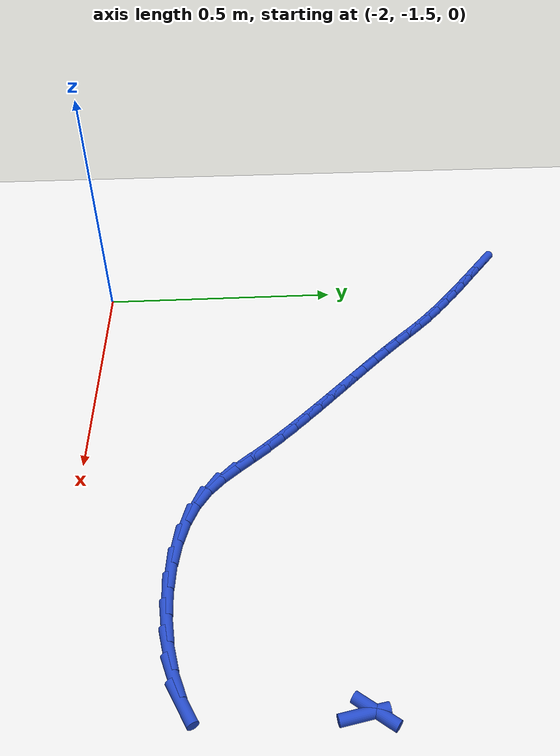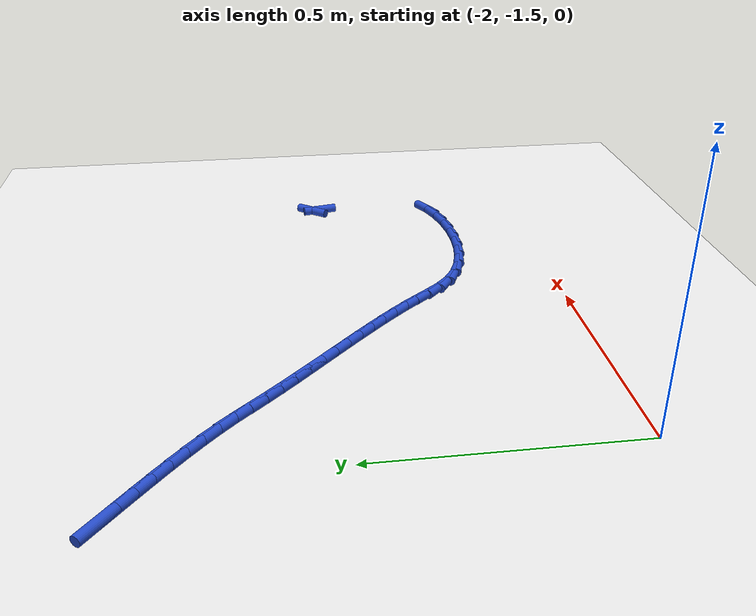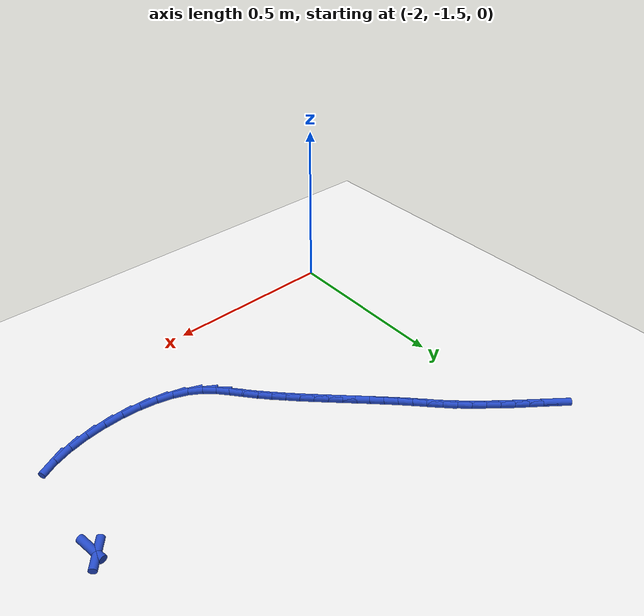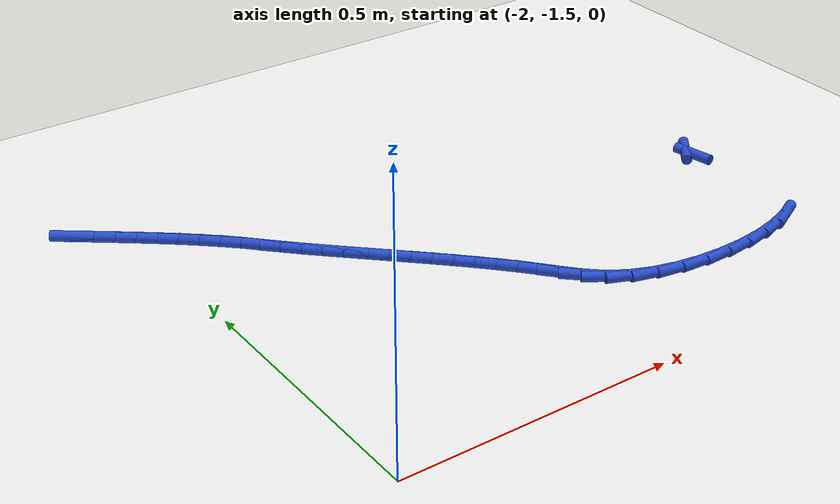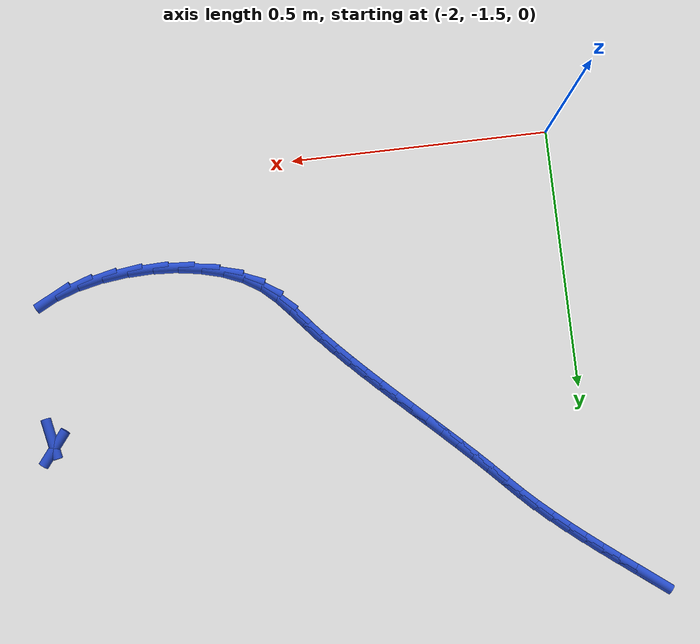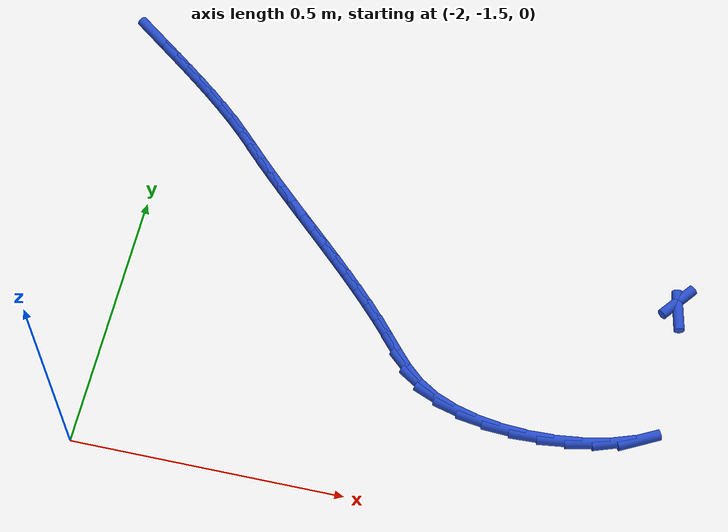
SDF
<sdf version="1.6">
 <world name="default">
  <model name="ground_plane">
   <static>1</static>
   <link name="link">
    <collision name="collision">
     <geometry><plane><normal>0 0 1</normal><size>100 100</size></plane></geometry>
     <surface><friction><ode><mu>100</mu><mu2>50</mu2></ode></friction></surface>
    </collision>
    <visual name="visual">
     <cast_shadows>0</cast_shadows>
     <geometry><plane><normal>0 0 1</normal><size>100 100</size></plane></geometry>
     <material>
      <script><uri>file://media/materials/scripts/gazebo.material</uri><name>Gazebo/WhiteGlow</name></script>
     </material>
    </visual>
   </link>
  </model>
  <model name="line">
   <link name="link_129">
    <pose>-2.0939688466283197 -0.6196924280987919 0.01 0 1.57 -0.6547579813257514</pose>
    <collision name="collision">
     <geometry><cylinder><radius>0.01</radius><length>0.08</length></cylinder></geometry>
    </collision>
    <visual name="visual">
     <material>
      <script><name>Gazebo/Blue</name><uri>file://media/materials/scripts/gazebo.material</uri></script>
     </material>
     <geometry><cylinder><radius>0.01</radius><length>0.08</length></cylinder></geometry>
    </visual>
   </link>
   <link name="link_130">
    <pose>-2.064086637130896 -0.6426341770940153 0.01 0 1.57 -0.6550877856548699</pose>
    <collision name="collision">
     <geometry><cylinder><radius>0.01</radius><length>0.08</length></cylinder></geometry>
    </collision>
    <visual name="visual">
     <material>
      <script><name>Gazebo/Blue</name><uri>file://media/materials/scripts/gazebo.material</uri></script>
     </material>
     <geometry><cylinder><radius>0.01</radius><length>0.08</length></cylinder></geometry>
    </visual>
   </link>
   <link name="link_131">
    <pose>-2.0342122661995674 -0.6655855721905874 0.01 0 1.57 -0.6603141730243608</pose>
    <collision name="collision">
     <geometry><cylinder><radius>0.01</radius><length>0.08</length></cylinder></geometry>
    </collision>
    <visual name="visual">
     <material>
      <script><name>Gazebo/Blue</name><uri>file://media/materials/scripts/gazebo.material</uri></script>
     </material>
     <geometry><cylinder><radius>0.01</radius><length>0.08</length></cylinder></geometry>
    </visual>
   </link>
   <link name="link_132">
    <pose>-2.004479908656672 -0.6886759722158221 0.01 0 1.57 -0.670458499256323</pose>
    <collision name="collision">
     <geometry><cylinder><radius>0.01</radius><length>0.08</length></cylinder></geometry>
    </collision>
    <visual name="visual">
     <material>
      <script><name>Gazebo/Blue</name><uri>file://media/materials/scripts/gazebo.material</uri></script>
     </material>
     <geometry><cylinder><radius>0.01</radius><length>0.08</length></cylinder></geometry>
    </visual>
   </link>
   <link name="link_133">
    <pose>-1.9750237393245427 -0.7120347359970344 0.01 0 1.57 -0.6855590541402593</pose>
    <collision name="collision">
     <geometry><cylinder><radius>0.01</radius><length>0.08</length></cylinder></geometry>
    </collision>
    <visual name="visual">
     <material>
      <script><name>Gazebo/Blue</name><uri>file://media/materials/scripts/gazebo.material</uri></script>
     </material>
     <geometry><cylinder><radius>0.01</radius><length>0.08</length></cylinder></geometry>
    </visual>
   </link>
   <link name="link_134">
    <pose>-1.9459779330255138 -0.7357912223615386 0.01 0 1.57 -0.7056639234185472</pose>
    <collision name="collision">
     <geometry><cylinder><radius>0.01</radius><length>0.08</length></cylinder></geometry>
    </collision>
    <visual name="visual">
     <material>
      <script><name>Gazebo/Blue</name><uri>file://media/materials/scripts/gazebo.material</uri></script>
     </material>
     <geometry><cylinder><radius>0.01</radius><length>0.08</length></cylinder></geometry>
    </visual>
   </link>
   <link name="link_135">
    <pose>-1.9174766645819217 -0.7600747901366502 0.01 0 1.57 -0.7308199772554973</pose>
    <collision name="collision">
     <geometry><cylinder><radius>0.01</radius><length>0.08</length></cylinder></geometry>
    </collision>
    <visual name="visual">
     <material>
      <script><name>Gazebo/Blue</name><uri>file://media/materials/scripts/gazebo.material</uri></script>
     </material>
     <geometry><cylinder><radius>0.01</radius><length>0.08</length></cylinder></geometry>
    </visual>
   </link>
   <link name="link_136">
    <pose>-1.8896541088161007 -0.7850147981496822 0.01 0 1.57 -0.7610576672949914</pose>
    <collision name="collision">
     <geometry><cylinder><radius>0.01</radius><length>0.08</length></cylinder></geometry>
    </collision>
    <visual name="visual">
     <material>
      <script><name>Gazebo/Blue</name><uri>file://media/materials/scripts/gazebo.material</uri></script>
     </material>
     <geometry><cylinder><radius>0.01</radius><length>0.08</length></cylinder></geometry>
    </visual>
   </link>
   <link name="link_137">
    <pose>-1.8626444405503866 -0.8107406052279504 0.01 0 1.57 -0.7942583122493775</pose>
    <collision name="collision">
     <geometry><cylinder><radius>0.01</radius><length>0.08</length></cylinder></geometry>
    </collision>
    <visual name="visual">
     <material>
      <script><name>Gazebo/Blue</name><uri>file://media/materials/scripts/gazebo.material</uri></script>
     </material>
     <geometry><cylinder><radius>0.01</radius><length>0.08</length></cylinder></geometry>
    </visual>
   </link>
   <link name="link_138">
    <pose>-1.8365232877310318 -0.8373287827811847 0.01 0 1.57 -0.802233622125424</pose>
    <collision name="collision">
     <geometry><cylinder><radius>0.01</radius><length>0.08</length></cylinder></geometry>
    </collision>
    <visual name="visual">
     <material>
      <script><name>Gazebo/Blue</name><uri>file://media/materials/scripts/gazebo.material</uri></script>
     </material>
     <geometry><cylinder><radius>0.01</radius><length>0.08</length></cylinder></geometry>
    </visual>
   </link>
   <link name="link_139">
    <pose>-1.8105873080798456 -0.8641530899929315 0.01 0 1.57 -0.7873162768102542</pose>
    <collision name="collision">
     <geometry><cylinder><radius>0.01</radius><length>0.08</length></cylinder></geometry>
    </collision>
    <visual name="visual">
     <material>
      <script><name>Gazebo/Blue</name><uri>file://media/materials/scripts/gazebo.material</uri></script>
     </material>
     <geometry><cylinder><radius>0.01</radius><length>0.08</length></cylinder></geometry>
    </visual>
   </link>
   <link name="link_140">
    <pose>-1.784203792484474 -0.8906380133745841 0.01 0 1.57 -0.7746835203855394</pose>
    <collision name="collision">
     <geometry><cylinder><radius>0.01</radius><length>0.08</length></cylinder></geometry>
    </collision>
    <visual name="visual">
     <material>
      <script><name>Gazebo/Blue</name><uri>file://media/materials/scripts/gazebo.material</uri></script>
     </material>
     <geometry><cylinder><radius>0.01</radius><length>0.08</length></cylinder></geometry>
    </visual>
   </link>
   <link name="link_141">
    <pose>-1.7574450154666854 -0.9168294262977675 0.01 0 1.57 -0.7656140366879018</pose>
    <collision name="collision">
     <geometry><cylinder><radius>0.01</radius><length>0.08</length></cylinder></geometry>
    </collision>
    <visual name="visual">
     <material>
      <script><name>Gazebo/Blue</name><uri>file://media/materials/scripts/gazebo.material</uri></script>
     </material>
     <geometry><cylinder><radius>0.01</radius><length>0.08</length></cylinder></geometry>
    </visual>
   </link>
   <link name="link_142">
    <pose>-1.7304200617634904 -0.9428056609443642 0.01 0 1.57 -0.7600806623275649</pose>
    <collision name="collision">
     <geometry><cylinder><radius>0.01</radius><length>0.08</length></cylinder></geometry>
    </collision>
    <visual name="visual">
     <material>
      <script><name>Gazebo/Blue</name><uri>file://media/materials/scripts/gazebo.material</uri></script>
     </material>
     <geometry><cylinder><radius>0.01</radius><length>0.08</length></cylinder></geometry>
    </visual>
   </link>
   <link name="link_143">
    <pose>-1.7032380161118998 -0.9686450494962588 0.01 0 1.57 -0.7580676213968588</pose>
    <collision name="collision">
     <geometry><cylinder><radius>0.01</radius><length>0.08</length></cylinder></geometry>
    </collision>
    <visual name="visual">
     <material>
      <script><name>Gazebo/Blue</name><uri>file://media/materials/scripts/gazebo.material</uri></script>
     </material>
     <geometry><cylinder><radius>0.01</radius><length>0.08</length></cylinder></geometry>
    </visual>
   </link>
   <link name="link_144">
    <pose>-1.676007963248927 -0.9944259241353339 0.01 0 1.57 -0.7595724736849776</pose>
    <collision name="collision">
     <geometry><cylinder><radius>0.01</radius><length>0.08</length></cylinder></geometry>
    </collision>
    <visual name="visual">
     <material>
      <script><name>Gazebo/Blue</name><uri>file://media/materials/scripts/gazebo.material</uri></script>
     </material>
     <geometry><cylinder><radius>0.01</radius><length>0.08</length></cylinder></geometry>
    </visual>
   </link>
   <link name="link_145">
    <pose>-1.648838987911581 -1.0202266170434728 0.01 0 1.57 -0.764606860199493</pose>
    <collision name="collision">
     <geometry><cylinder><radius>0.01</radius><length>0.08</length></cylinder></geometry>
    </collision>
    <visual name="visual">
     <material>
      <script><name>Gazebo/Blue</name><uri>file://media/materials/scripts/gazebo.material</uri></script>
     </material>
     <geometry><cylinder><radius>0.01</radius><length>0.08</length></cylinder></geometry>
    </visual>
   </link>
   <link name="link_146">
    <pose>-1.6218401748368747 -1.0461254604025596 0.01 0 1.57 -0.7731960717983832</pose>
    <collision name="collision">
     <geometry><cylinder><radius>0.01</radius><length>0.08</length></cylinder></geometry>
    </collision>
    <visual name="visual">
     <material>
      <script><name>Gazebo/Blue</name><uri>file://media/materials/scripts/gazebo.material</uri></script>
     </material>
     <geometry><cylinder><radius>0.01</radius><length>0.08</length></cylinder></geometry>
    </visual>
   </link>
   <link name="link_147">
    <pose>-1.595120608761817 -1.0722007863944774 0.01 0 1.57 -0.7853773980497871</pose>
    <collision name="collision">
     <geometry><cylinder><radius>0.01</radius><length>0.08</length></cylinder></geometry>
    </collision>
    <visual name="visual">
     <material>
      <script><name>Gazebo/Blue</name><uri>file://media/materials/scripts/gazebo.material</uri></script>
     </material>
     <geometry><cylinder><radius>0.01</radius><length>0.08</length></cylinder></geometry>
    </visual>
   </link>
   <link name="link_148">
    <pose>-1.5687893744234205 -1.0985309272011106 0.01 0 1.57 -0.8011971472219053</pose>
    <collision name="collision">
     <geometry><cylinder><radius>0.01</radius><length>0.08</length></cylinder></geometry>
    </collision>
    <visual name="visual">
     <material>
      <script><name>Gazebo/Blue</name><uri>file://media/materials/scripts/gazebo.material</uri></script>
     </material>
     <geometry><cylinder><radius>0.01</radius><length>0.08</length></cylinder></geometry>
    </visual>
   </link>
   <link name="link_149">
    <pose>-1.5429555565586972 -1.1251942150043415 0.01 0 1.57 -0.8207061745515772</pose>
    <collision name="collision">
     <geometry><cylinder><radius>0.01</radius><length>0.08</length></cylinder></geometry>
    </collision>
    <visual name="visual">
     <material>
      <script><name>Gazebo/Blue</name><uri>file://media/materials/scripts/gazebo.material</uri></script>
     </material>
     <geometry><cylinder><radius>0.01</radius><length>0.08</length></cylinder></geometry>
    </visual>
   </link>
   <link name="link_150">
    <pose>-1.5177282399046568 -1.1522689819860537 0.01 0 1.57 -0.84395372808618</pose>
    <collision name="collision">
     <geometry><cylinder><radius>0.01</radius><length>0.08</length></cylinder></geometry>
    </collision>
    <visual name="visual">
     <material>
      <script><name>Gazebo/Blue</name><uri>file://media/materials/scripts/gazebo.material</uri></script>
     </material>
     <geometry><cylinder><radius>0.01</radius><length>0.08</length></cylinder></geometry>
    </visual>
   </link>
   <link name="link_151">
    <pose>-1.4932165091983114 -1.1798335603281314 0.01 0 1.57 -0.86814246162454</pose>
    <collision name="collision">
     <geometry><cylinder><radius>0.01</radius><length>0.08</length></cylinder></geometry>
    </collision>
    <visual name="visual">
     <material>
      <script><name>Gazebo/Blue</name><uri>file://media/materials/scripts/gazebo.material</uri></script>
     </material>
     <geometry><cylinder><radius>0.01</radius><length>0.08</length></cylinder></geometry>
    </visual>
   </link>
   <link name="link_152">
    <pose>-1.4694427066032711 -1.207907266390742 0.01 0 1.57 -0.845641160961325</pose>
    <collision name="collision">
     <geometry><cylinder><radius>0.01</radius><length>0.08</length></cylinder></geometry>
    </collision>
    <visual name="visual">
     <material>
      <script><name>Gazebo/Blue</name><uri>file://media/materials/scripts/gazebo.material</uri></script>
     </material>
     <geometry><cylinder><radius>0.01</radius><length>0.08</length></cylinder></geometry>
    </visual>
   </link>
   <link name="link_153">
    <pose>-1.444972763667559 -1.2355185389768535 0.01 0 1.57 -0.7392897263788432</pose>
    <collision name="collision">
     <geometry><cylinder><radius>0.01</radius><length>0.08</length></cylinder></geometry>
    </collision>
    <visual name="visual">
     <material>
      <script><name>Gazebo/Blue</name><uri>file://media/materials/scripts/gazebo.material</uri></script>
     </material>
     <geometry><cylinder><radius>0.01</radius><length>0.08</length></cylinder></geometry>
    </visual>
   </link>
   <link name="link_154">
    <pose>-1.417164441721853 -1.2608738311521566 0.01 0 1.57 -0.5645551242546443</pose>
    <collision name="collision">
     <geometry><cylinder><radius>0.01</radius><length>0.08</length></cylinder></geometry>
    </collision>
    <visual name="visual">
     <material>
      <script><name>Gazebo/Blue</name><uri>file://media/materials/scripts/gazebo.material</uri></script>
     </material>
     <geometry><cylinder><radius>0.01</radius><length>0.08</length></cylinder></geometry>
    </visual>
   </link>
   <link name="link_155">
    <pose>-1.3834687050544838 -1.2822137907009117 0.01 0 1.57 -0.39291837765451676</pose>
    <collision name="collision">
     <geometry><cylinder><radius>0.01</radius><length>0.08</length></cylinder></geometry>
    </collision>
    <visual name="visual">
     <material>
      <script><name>Gazebo/Blue</name><uri>file://media/materials/scripts/gazebo.material</uri></script>
     </material>
     <geometry><cylinder><radius>0.01</radius><length>0.08</length></cylinder></geometry>
    </visual>
   </link>
   <link name="link_156">
    <pose>-1.343518152662732 -1.2987721164020685 0.01 0 1.57 -0.2584851916518526</pose>
    <collision name="collision">
     <geometry><cylinder><radius>0.01</radius><length>0.08</length></cylinder></geometry>
    </collision>
    <visual name="visual">
     <material>
      <script><name>Gazebo/Blue</name><uri>file://media/materials/scripts/gazebo.material</uri></script>
     </material>
     <geometry><cylinder><radius>0.01</radius><length>0.08</length></cylinder></geometry>
    </visual>
   </link>
   <link name="link_157">
    <pose>-1.2987567816071457 -1.3106070312508067 0.01 0 1.57 -0.14855881906242968</pose>
    <collision name="collision">
     <geometry><cylinder><radius>0.01</radius><length>0.08</length></cylinder></geometry>
    </collision>
    <visual name="visual">
     <material>
      <script><name>Gazebo/Blue</name><uri>file://media/materials/scripts/gazebo.material</uri></script>
     </material>
     <geometry><cylinder><radius>0.01</radius><length>0.08</length></cylinder></geometry>
    </visual>
   </link>
   <link name="link_158">
    <pose>-1.2506834912027496 -1.3178017490156009 0.01 0 1.57 -0.05282572286516921</pose>
    <collision name="collision">
     <geometry><cylinder><radius>0.01</radius><length>0.08</length></cylinder></geometry>
    </collision>
    <visual name="visual">
     <material>
      <script><name>Gazebo/Blue</name><uri>file://media/materials/scripts/gazebo.material</uri></script>
     </material>
     <geometry><cylinder><radius>0.01</radius><length>0.08</length></cylinder></geometry>
    </visual>
   </link>
   <link name="link_159">
    <pose>-1.2007971807645708 -1.3204394834649267 0.01 0 1.57 0.03655779533646795</pose>
    <collision name="collision">
     <geometry><cylinder><radius>0.01</radius><length>0.08</length></cylinder></geometry>
    </collision>
    <visual name="visual">
     <material>
      <script><name>Gazebo/Blue</name><uri>file://media/materials/scripts/gazebo.material</uri></script>
     </material>
     <geometry><cylinder><radius>0.01</radius><length>0.08</length></cylinder></geometry>
    </visual>
   </link>
   <link name="link_160">
    <pose>-1.1505967496076348 -1.3186034483672586 0.01 0 1.57 0.12635592277739488</pose>
    <collision name="collision">
     <geometry><cylinder><radius>0.01</radius><length>0.08</length></cylinder></geometry>
    </collision>
    <visual name="visual">
     <material>
      <script><name>Gazebo/Blue</name><uri>file://media/materials/scripts/gazebo.material</uri></script>
     </material>
     <geometry><cylinder><radius>0.01</radius><length>0.08</length></cylinder></geometry>
    </visual>
   </link>
   <link name="link_161">
    <pose>-1.1015810970469695 -1.3123768574910717 0.01 0 1.57 0.22355743362561276</pose>
    <collision name="collision">
     <geometry><cylinder><radius>0.01</radius><length>0.08</length></cylinder></geometry>
    </collision>
    <visual name="visual">
     <material>
      <script><name>Gazebo/Blue</name><uri>file://media/materials/scripts/gazebo.material</uri></script>
     </material>
     <geometry><cylinder><radius>0.01</radius><length>0.08</length></cylinder></geometry>
    </visual>
   </link>
   <link name="link_162">
    <pose>-1.055249122397601 -1.3018429246048409 0.01 0 1.57 0.336796811651502</pose>
    <collision name="collision">
     <geometry><cylinder><radius>0.01</radius><length>0.08</length></cylinder></geometry>
    </collision>
    <visual name="visual">
     <material>
      <script><name>Gazebo/Blue</name><uri>file://media/materials/scripts/gazebo.material</uri></script>
     </material>
     <geometry><cylinder><radius>0.01</radius><length>0.08</length></cylinder></geometry>
    </visual>
   </link>
   <link name="link_163">
    <pose>-1.0130997249745552 -1.2870848634770404 0.01 0 1.57 0.4781294512618448</pose>
    <collision name="collision">
     <geometry><cylinder><radius>0.01</radius><length>0.08</length></cylinder></geometry>
    </collision>
    <visual name="visual">
     <material>
      <script><name>Gazebo/Blue</name><uri>file://media/materials/scripts/gazebo.material</uri></script>
     </material>
     <geometry><cylinder><radius>0.01</radius><length>0.08</length></cylinder></geometry>
    </visual>
   </link>
   <link name="link_172">
    <pose>-0.9818157122364338 -1.0162214593356298 0.01 0 1.57 -1.3742348353053977</pose>
    <collision name="collision">
     <geometry><cylinder><radius>0.01</radius><length>0.08</length></cylinder></geometry>
    </collision>
    <visual name="visual">
     <material>
      <script><name>Gazebo/Blue</name><uri>file://media/materials/scripts/gazebo.material</uri></script>
     </material>
     <geometry><cylinder><radius>0.01</radius><length>0.08</length></cylinder></geometry>
    </visual>
   </link>
   <link name="link_173">
    <pose>-0.9854414131436787 -0.9980139993672728 0.01 0 1.57 0.9078984036681143</pose>
    <collision name="collision">
     <geometry><cylinder><radius>0.01</radius><length>0.08</length></cylinder></geometry>
    </collision>
    <visual name="visual">
     <material>
      <script><name>Gazebo/Blue</name><uri>file://media/materials/scripts/gazebo.material</uri></script>
     </material>
     <geometry><cylinder><radius>0.01</radius><length>0.08</length></cylinder></geometry>
    </visual>
   </link>
  </model>
 </world>
</sdf>
